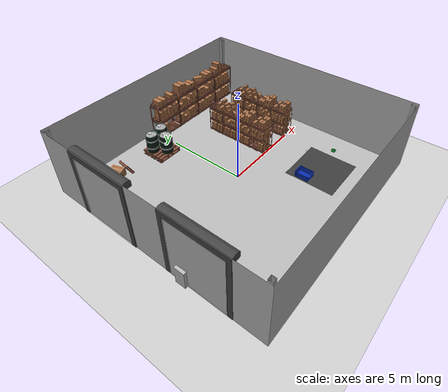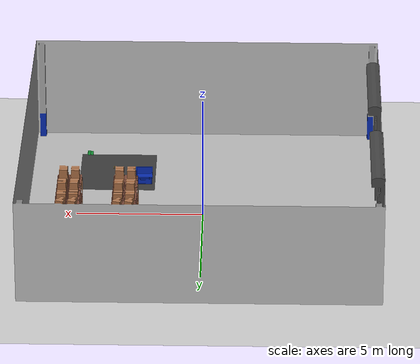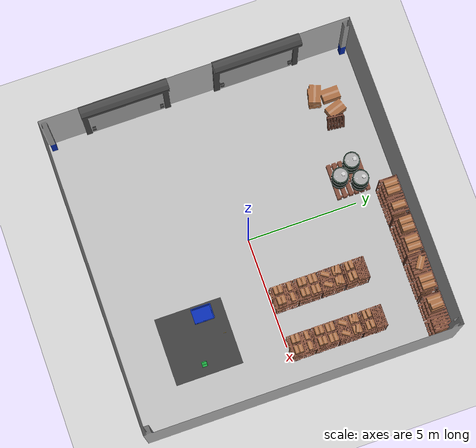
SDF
<sdf version="1.4">
 <world name="default">
  <light name="sun" type="directional">
   <pose>0 0 20 0 -0 0</pose>
   <diffuse>0.9 0.9 0.9 1</diffuse>
   <specular>0.1 0.1 0.1 1</specular>
   <attenuation>
    <range>1000</range>
    <constant>0.9</constant>
    <linear>0.01</linear>
    <quadratic>0.001</quadratic>
   </attenuation>
   <direction>-0.5 0.5 -1</direction>
  </light>
  <include><uri>model://ground_plane</uri></include>
  <scene><ambient>0.4 0.4 0.4 1</ambient><background>0.7 0.7 0.7 1</background><shadows>1</shadows></scene>
  <spherical_coordinates>
   <surface_model>EARTH_WGS84</surface_model>
   <latitude_deg>51.9906361</latitude_deg>
   <longitude_deg>4.3767874</longitude_deg>
   <elevation>45.110</elevation>
   <heading_deg>180</heading_deg>
  </spherical_coordinates>
  <plugin name="ros_interface_plugin" filename="librotors_gazebo_ros_interface_plugin.so"/>
  <physics name="default_physics" default="0" type="ode">
   <gravity>0 0 -9.8066</gravity>
   <ode>
    <solver>
     <type>quick</type>
     <iters>10</iters>
     <sor>1.3</sor>
     <use_dynamic_moi_rescaling>0</use_dynamic_moi_rescaling>
    </solver>
    <constraints>
     <cfm>0</cfm>
     <erp>0.2</erp>
     <contact_max_correcting_vel>100</contact_max_correcting_vel>
     <contact_surface_layer>0.001</contact_surface_layer>
    </constraints>
   </ode>
   <max_step_size>0.002</max_step_size>
   <real_time_factor>1</real_time_factor>
   <real_time_update_rate>500</real_time_update_rate>
   <magnetic_field>6e-06 2.3e-05 -4.2e-05</magnetic_field>
  </physics>
  <include>
   <uri>model://fetchit_warehouse</uri>
   <name>fetchit_warehouse</name>
   <pose>0 0 -0.005 0 0 0</pose>
  </include>
  <include>
   <uri>model://caddy_green</uri>
   <name>caddy_green1</name>
   <pose>4.609024 -3.594681 0.814290 0 0 0</pose>
  </include>
  <include>
   <uri>model://gearbox_bolt</uri>
   <name>gearbox_bolt1</name>
   <pose>3.604571 -2.373102 0.81 0 0 0</pose>
  </include>
  <include>
   <uri>model://gearbox_bolt</uri>
   <name>gearbox_bolt2</name>
   <pose>3.609393 -2.302640 0.81 0 0 0</pose>
  </include>
  <include>
   <uri>model://dropoff_box</uri>
   <name>dropoff_box1</name>
   <pose>2.445290 -2.956990 0.011069 0 0 0</pose>
  </include>
 </world>
</sdf>

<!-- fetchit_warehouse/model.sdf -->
<sdf version='1.4'>
  <model name="fetchit_warehouse">
      <static>1</static>
      <link name='link'>
        <visual name='visual'>
          <geometry>
            <mesh>
              <uri>model://fetchit_warehouse/meshes/fetchit_env_version6.dae</uri>
              <scale>1 1 1</scale>
            </mesh>
          </geometry>
        </visual>
        <velocity_decay>
          <linear>0.000000</linear>
          <angular>0.000000</angular>
        </velocity_decay>
        <self_collide>0</self_collide>
        <kinematic>0</kinematic>
        <gravity>1</gravity>
      </link>
  </model>
</sdf>

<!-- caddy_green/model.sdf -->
<sdf version='1.4'>
  <model name="caddy_green">
      <static>0</static>
      <link name='link'>
        <inertial>
          <mass>0.0680389</mass>
          <inertia>
            <ixx>0.00040636575898</ixx>
            <ixy>0.000000</ixy>
            <ixz>0.000000</ixz>
            <iyy>0.00040636575898</iyy>
            <iyz>0.000000</iyz>
            <izz>0.000625974918075</izz>
          </inertia>
        </inertial>
        <collision name='collision'>
          <geometry>
            <mesh>
              <uri>model://caddy_green/meshes/Romanoff_Small_Utility_Caddy_cof.stl</uri>
              <scale>1 1 1</scale>
            </mesh>
          </geometry>
          <surface>
            <friction>
              <ode>
                <mu>1.0</mu>
                <mu2>1.0</mu2>
              </ode>
            </friction>
          </surface>
        </collision>

        <visual name='visual'>
          <geometry>
            <mesh>
              <uri>model://caddy_green/meshes/Romanoff_Small_Utility_Caddy_cof_green.dae</uri>
              <scale>1 1 1</scale>
            </mesh>
          </geometry>
        </visual>
        <velocity_decay>
          <linear>0.000000</linear>
          <angular>0.000000</angular>
        </velocity_decay>
        <self_collide>0</self_collide>
        <kinematic>0</kinematic>
        <gravity>1</gravity>
      </link>
  </model>
</sdf>

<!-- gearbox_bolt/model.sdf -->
<sdf version='1.4'>
  <model name="gearbox_bolt">
      <static>0</static>
      <link name='link'>
        <inertial>
          <pose>0 0 0.030633 0 0 0</pose>
          <mass>0.0592855</mass>
          <inertia>
            <ixx>2.2977502034e-05</ixx>
            <ixy>0.000000</ixy>
            <ixz>0.000000</ixz>
            <iyy>2.29905352792e-05</iyy>
            <iyz>0.000000</iyz>
            <izz>8.87979175473e-06</izz>
          </inertia>
        </inertial>
        <collision name='collision'>
          <geometry>
            <mesh>
              <uri>model://gearbox_bolt/meshes/gear_bolt_simple.stl</uri>
              <scale>1 1 1</scale>
            </mesh>
          </geometry>
          <surface>
            <friction>
              <ode>
                <mu>30.0</mu>
                <mu2>30.0</mu2>
              </ode>
            </friction>
          </surface>
        </collision>
        <visual name='visual'>
          <geometry>
            <mesh>
              <uri>model://gearbox_bolt/meshes/screw_v1.dae</uri>
              <scale>1 1 1</scale>
            </mesh>
          </geometry>
        </visual>
        <velocity_decay>
          <linear>0.000000</linear>
          <angular>0.000000</angular>
        </velocity_decay>
        <self_collide>0</self_collide>
        <kinematic>0</kinematic>
        <gravity>1</gravity>
      </link>
  </model>
</sdf>

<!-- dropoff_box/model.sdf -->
<sdf version='1.4'>
  <model name="dropoff_box">
      <static>1</static>
      <link name='link'>
        <inertial>
          <mass>1.0</mass>
          <inertia>
            <ixx>0.0755262496948</ixx>
            <ixy>0.000000</ixy>
            <ixz>0.000000</ixz>
            <iyy>0.0441608153271</iyy>
            <iyz>0.000000</iyz>
            <izz>0.1033038684</izz>
          </inertia>
        </inertial>
        <collision name='collision'>
          <geometry>
            <mesh>
              <uri>model://dropoff_box/meshes/box_v1.stl</uri>
              <scale>1 1 1</scale>
            </mesh>
          </geometry>
          <surface>
            <friction>
              <ode>
                <mu>30.0</mu>
                <mu2>30.0</mu2>
              </ode>
            </friction>
            <contact>
              <ode>
                <soft_cfm>0</soft_cfm>
    	          <soft_erp>0.2</soft_erp>
    	          <kp>1e+13</kp>
    	          <kd>1</kd>
    	          <max_vel>0.01</max_vel>
    	          <min_depth>0</min_depth>
              </ode>
            </contact>
          </surface>
        </collision>
        <visual name='visual'>
          <geometry>
            <mesh>
              <uri>model://dropoff_box/meshes/box_v1.dae</uri>
              <scale>1 1 1</scale>
            </mesh>
          </geometry>
        </visual>
        <velocity_decay>
          <linear>0.000000</linear>
          <angular>0.000000</angular>
        </velocity_decay>
        <self_collide>0</self_collide>
        <kinematic>0</kinematic>
        <gravity>1</gravity>
      </link>
  </model>
</sdf>
